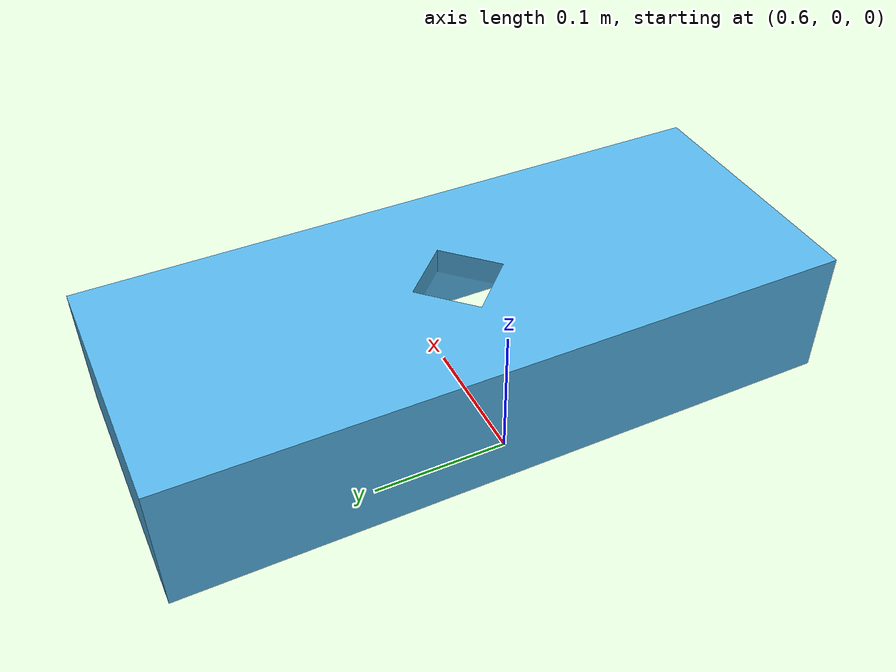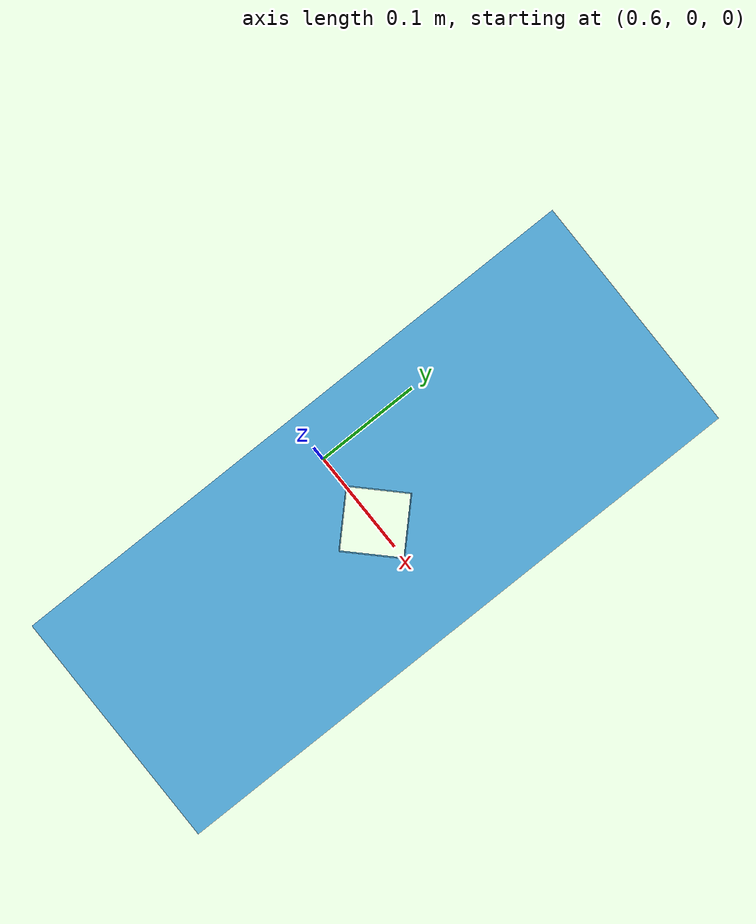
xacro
<robot name="box" xmlns:xacro="http://ros.org/wiki/xacro">
  <xacro:macro name="default_inertial" params="mass">
     <inertial>
       <mass value="${mass}"/>
       <inertia ixx="1.0" ixy="0.0" ixz="0.0" iyy="1.0" iyz="0.0" izz="1.0" />
     </inertial>
  </xacro:macro>
  <link name="world"/>

  <link name="table">
  	<visual>
  	<geometry>
  		<mesh filename="package://franka_gazebo/meshes/visual/table_rl.stl" />
  	</geometry>
  	<origin xyz= "0 0 0" rpy="0 0 0"/>
  	</visual>
  	<collision>
  		<geometry>
  		<mesh filename="package://franka_gazebo/meshes/visual/table_rl.stl" />
  		</geometry>
  	<origin xyz= "0 0 0" rpy="0 0 0"/>
  	</collision>
  	<xacro:default_inertial mass="0.01"/>
  </link>

  <joint name="basetoworld" type="fixed">
  	<parent link="world"/>
  	<child link="table"/>
  	<origin xyz= "0.772561 0.250738 0" rpy="0 0 1.57"/>
  </joint>

</robot>
